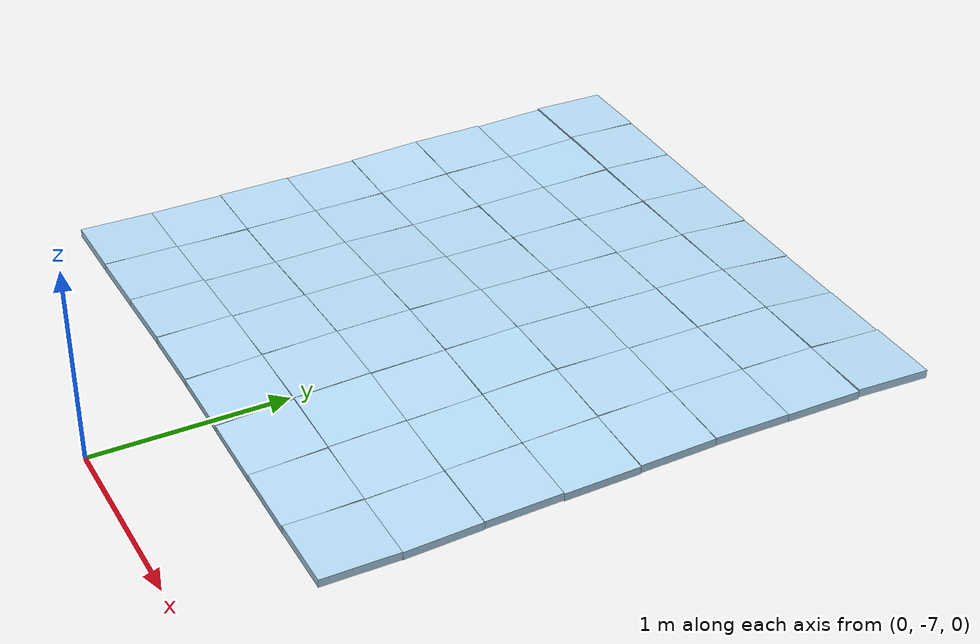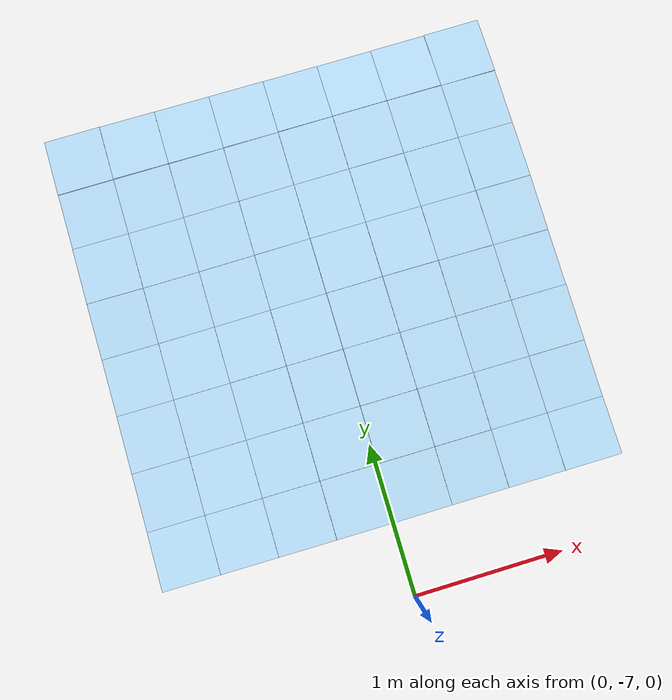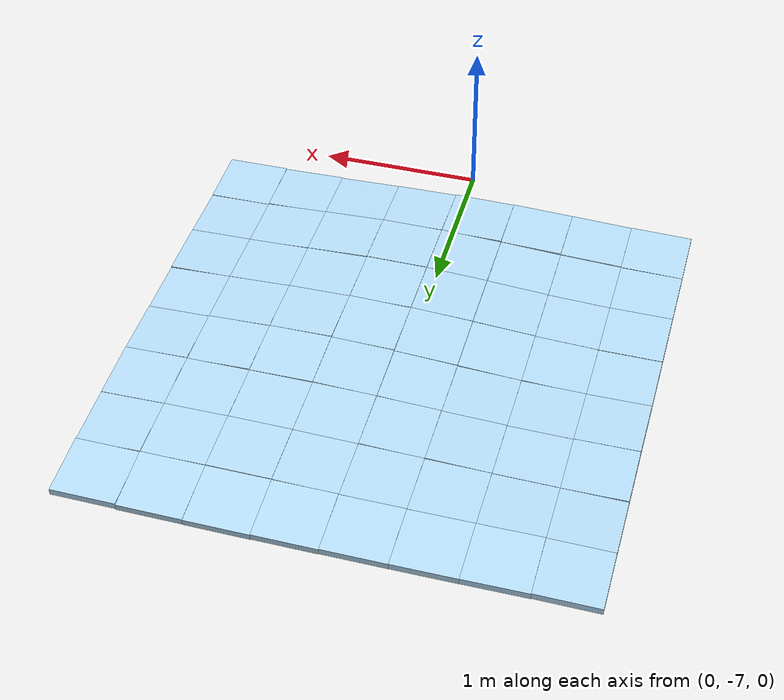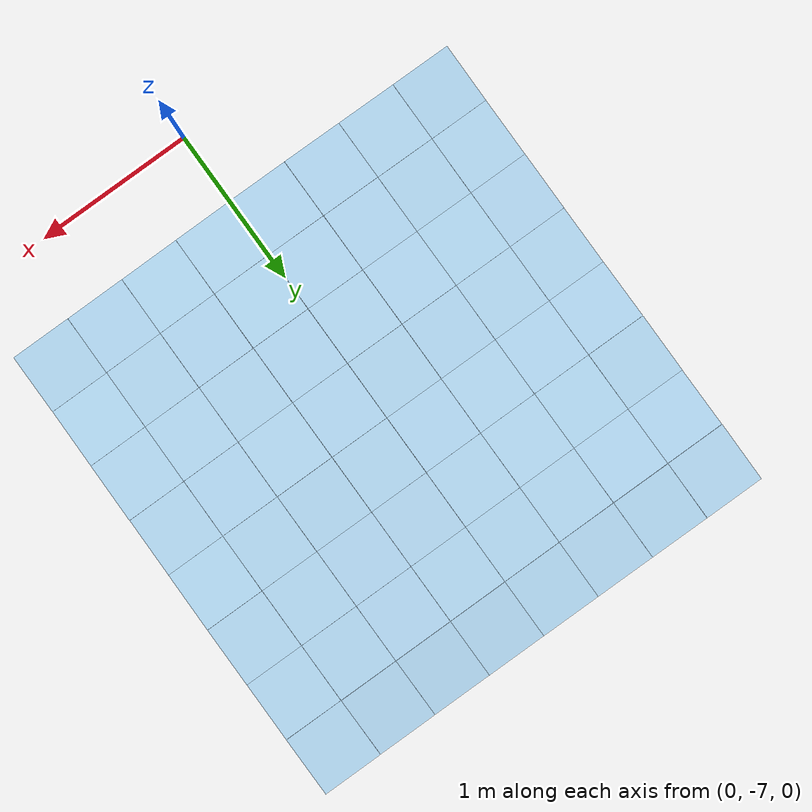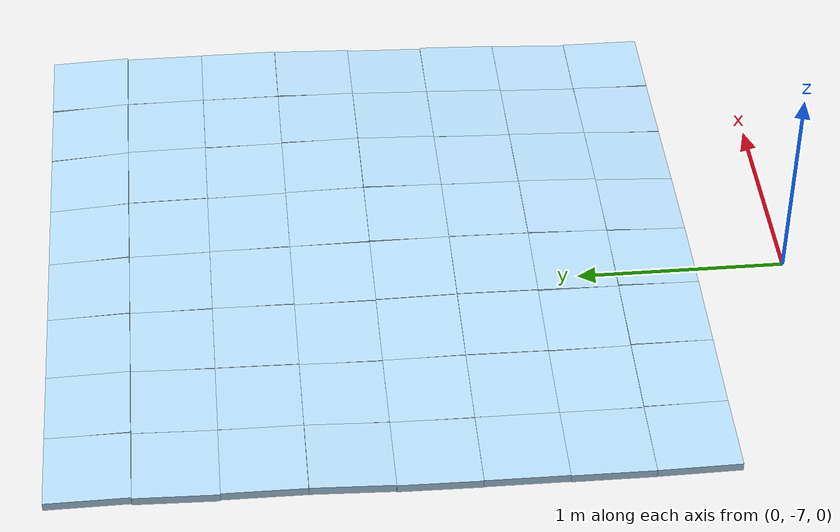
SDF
<sdf version="1.8">
 <world name="default">
  <model name="slip_patch_3">
   <static>true</static>
   <link name="t_0_0">
    <pose>-1.3125 -6.3125 0.2216 -0.01628 -0.01886 0</pose>
    <collision name="collision">
     <geometry><box><size>0.3750 0.3750 0.04</size></box></geometry>
     <surface><friction><ode><mu>0.3</mu><mu2>0.3</mu2></ode></friction></surface>
    </collision>
    <visual name="visual">
     <geometry><box><size>0.3750 0.3750 0.04</size></box></geometry>
     <material>
      <ambient>0.62 0.76 0.85 1</ambient>
      <diffuse>0.70 0.85 0.95 1</diffuse>
      <specular>0.9 0.9 0.9 1</specular>
     </material>
    </visual>
   </link>
   <link name="t_0_1">
    <pose>-1.3125 -5.9375 0.2179 0.00695 -0.01092 0</pose>
    <collision name="collision">
     <geometry><box><size>0.3750 0.3750 0.04</size></box></geometry>
     <surface><friction><ode><mu>0.3</mu><mu2>0.3</mu2></ode></friction></surface>
    </collision>
    <visual name="visual">
     <geometry><box><size>0.3750 0.3750 0.04</size></box></geometry>
     <material>
      <ambient>0.62 0.76 0.85 1</ambient>
      <diffuse>0.70 0.85 0.95 1</diffuse>
      <specular>0.9 0.9 0.9 1</specular>
     </material>
    </visual>
   </link>
   <link name="t_0_2">
    <pose>-1.3125 -5.5625 0.2222 0.00794 -0.00397 0</pose>
    <collision name="collision">
     <geometry><box><size>0.3750 0.3750 0.04</size></box></geometry>
     <surface><friction><ode><mu>0.3</mu><mu2>0.3</mu2></ode></friction></surface>
    </collision>
    <visual name="visual">
     <geometry><box><size>0.3750 0.3750 0.04</size></box></geometry>
     <material>
      <ambient>0.62 0.76 0.85 1</ambient>
      <diffuse>0.70 0.85 0.95 1</diffuse>
      <specular>0.9 0.9 0.9 1</specular>
     </material>
    </visual>
   </link>
   <link name="t_0_3">
    <pose>-1.3125 -5.1875 0.2244 0.01688 -0.00159 0</pose>
    <collision name="collision">
     <geometry><box><size>0.3750 0.3750 0.04</size></box></geometry>
     <surface><friction><ode><mu>0.3</mu><mu2>0.3</mu2></ode></friction></surface>
    </collision>
    <visual name="visual">
     <geometry><box><size>0.3750 0.3750 0.04</size></box></geometry>
     <material>
      <ambient>0.62 0.76 0.85 1</ambient>
      <diffuse>0.70 0.85 0.95 1</diffuse>
      <specular>0.9 0.9 0.9 1</specular>
     </material>
    </visual>
   </link>
   <link name="t_0_4">
    <pose>-1.3125 -4.8125 0.2377 0.04425 0.00715 0</pose>
    <collision name="collision">
     <geometry><box><size>0.3750 0.3750 0.04</size></box></geometry>
     <surface><friction><ode><mu>0.3</mu><mu2>0.3</mu2></ode></friction></surface>
    </collision>
    <visual name="visual">
     <geometry><box><size>0.3750 0.3750 0.04</size></box></geometry>
     <material>
      <ambient>0.62 0.76 0.85 1</ambient>
      <diffuse>0.70 0.85 0.95 1</diffuse>
      <specular>0.9 0.9 0.9 1</specular>
     </material>
    </visual>
   </link>
   <link name="t_0_5">
    <pose>-1.3125 -4.4375 0.2476 0.00695 0.00397 0</pose>
    <collision name="collision">
     <geometry><box><size>0.3750 0.3750 0.04</size></box></geometry>
     <surface><friction><ode><mu>0.3</mu><mu2>0.3</mu2></ode></friction></surface>
    </collision>
    <visual name="visual">
     <geometry><box><size>0.3750 0.3750 0.04</size></box></geometry>
     <material>
      <ambient>0.62 0.76 0.85 1</ambient>
      <diffuse>0.70 0.85 0.95 1</diffuse>
      <specular>0.9 0.9 0.9 1</specular>
     </material>
    </visual>
   </link>
   <link name="t_0_6">
    <pose>-1.3125 -4.0625 0.2520 0.03275 -0.01191 0</pose>
    <collision name="collision">
     <geometry><box><size>0.3750 0.3750 0.04</size></box></geometry>
     <surface><friction><ode><mu>0.3</mu><mu2>0.3</mu2></ode></friction></surface>
    </collision>
    <visual name="visual">
     <geometry><box><size>0.3750 0.3750 0.04</size></box></geometry>
     <material>
      <ambient>0.62 0.76 0.85 1</ambient>
      <diffuse>0.70 0.85 0.95 1</diffuse>
      <specular>0.9 0.9 0.9 1</specular>
     </material>
    </visual>
   </link>
   <link name="t_0_7">
    <pose>-1.3125 -3.6875 0.2628 -0.01231 -0.01291 0</pose>
    <collision name="collision">
     <geometry><box><size>0.3750 0.3750 0.04</size></box></geometry>
     <surface><friction><ode><mu>0.3</mu><mu2>0.3</mu2></ode></friction></surface>
    </collision>
    <visual name="visual">
     <geometry><box><size>0.3750 0.3750 0.04</size></box></geometry>
     <material>
      <ambient>0.62 0.76 0.85 1</ambient>
      <diffuse>0.70 0.85 0.95 1</diffuse>
      <specular>0.9 0.9 0.9 1</specular>
     </material>
    </visual>
   </link>
   <link name="t_1_0">
    <pose>-0.9375 -6.3125 0.2325 -0.00198 -0.03771 0</pose>
    <collision name="collision">
     <geometry><box><size>0.3750 0.3750 0.04</size></box></geometry>
     <surface><friction><ode><mu>0.3</mu><mu2>0.3</mu2></ode></friction></surface>
    </collision>
    <visual name="visual">
     <geometry><box><size>0.3750 0.3750 0.04</size></box></geometry>
     <material>
      <ambient>0.62 0.76 0.85 1</ambient>
      <diffuse>0.70 0.85 0.95 1</diffuse>
      <specular>0.9 0.9 0.9 1</specular>
     </material>
    </visual>
   </link>
   <link name="t_1_1">
    <pose>-0.9375 -5.9375 0.2263 -0.00992 -0.03970 0</pose>
    <collision name="collision">
     <geometry><box><size>0.3750 0.3750 0.04</size></box></geometry>
     <surface><friction><ode><mu>0.3</mu><mu2>0.3</mu2></ode></friction></surface>
    </collision>
    <visual name="visual">
     <geometry><box><size>0.3750 0.3750 0.04</size></box></geometry>
     <material>
      <ambient>0.62 0.76 0.85 1</ambient>
      <diffuse>0.70 0.85 0.95 1</diffuse>
      <specular>0.9 0.9 0.9 1</specular>
     </material>
    </visual>
   </link>
   <link name="t_1_2">
    <pose>-0.9375 -5.5625 0.2300 0.01290 -0.03970 0</pose>
    <collision name="collision">
     <geometry><box><size>0.3750 0.3750 0.04</size></box></geometry>
     <surface><friction><ode><mu>0.3</mu><mu2>0.3</mu2></ode></friction></surface>
    </collision>
    <visual name="visual">
     <geometry><box><size>0.3750 0.3750 0.04</size></box></geometry>
     <material>
      <ambient>0.62 0.76 0.85 1</ambient>
      <diffuse>0.70 0.85 0.95 1</diffuse>
      <specular>0.9 0.9 0.9 1</specular>
     </material>
    </visual>
   </link>
   <link name="t_1_3">
    <pose>-0.9375 -5.1875 0.2325 0.00099 -0.04069 0</pose>
    <collision name="collision">
     <geometry><box><size>0.3750 0.3750 0.04</size></box></geometry>
     <surface><friction><ode><mu>0.3</mu><mu2>0.3</mu2></ode></friction></surface>
    </collision>
    <visual name="visual">
     <geometry><box><size>0.3750 0.3750 0.04</size></box></geometry>
     <material>
      <ambient>0.62 0.76 0.85 1</ambient>
      <diffuse>0.70 0.85 0.95 1</diffuse>
      <specular>0.9 0.9 0.9 1</specular>
     </material>
    </visual>
   </link>
   <link name="t_1_4">
    <pose>-0.9375 -4.8125 0.2381 0.02978 -0.01390 0</pose>
    <collision name="collision">
     <geometry><box><size>0.3750 0.3750 0.04</size></box></geometry>
     <surface><friction><ode><mu>0.3</mu><mu2>0.3</mu2></ode></friction></surface>
    </collision>
    <visual name="visual">
     <geometry><box><size>0.3750 0.3750 0.04</size></box></geometry>
     <material>
      <ambient>0.62 0.76 0.85 1</ambient>
      <diffuse>0.70 0.85 0.95 1</diffuse>
      <specular>0.9 0.9 0.9 1</specular>
     </material>
    </visual>
   </link>
   <link name="t_1_5">
    <pose>-0.9375 -4.4375 0.2483 0.02184 -0.01589 0</pose>
    <collision name="collision">
     <geometry><box><size>0.3750 0.3750 0.04</size></box></geometry>
     <surface><friction><ode><mu>0.3</mu><mu2>0.3</mu2></ode></friction></surface>
    </collision>
    <visual name="visual">
     <geometry><box><size>0.3750 0.3750 0.04</size></box></geometry>
     <material>
      <ambient>0.62 0.76 0.85 1</ambient>
      <diffuse>0.70 0.85 0.95 1</diffuse>
      <specular>0.9 0.9 0.9 1</specular>
     </material>
    </visual>
   </link>
   <link name="t_1_6">
    <pose>-0.9375 -4.0625 0.2573 0.03473 -0.01489 0</pose>
    <collision name="collision">
     <geometry><box><size>0.3750 0.3750 0.04</size></box></geometry>
     <surface><friction><ode><mu>0.3</mu><mu2>0.3</mu2></ode></friction></surface>
    </collision>
    <visual name="visual">
     <geometry><box><size>0.3750 0.3750 0.04</size></box></geometry>
     <material>
      <ambient>0.62 0.76 0.85 1</ambient>
      <diffuse>0.70 0.85 0.95 1</diffuse>
      <specular>0.9 0.9 0.9 1</specular>
     </material>
    </visual>
   </link>
   <link name="t_1_7">
    <pose>-0.9375 -3.6875 0.2641 -0.03176 0.00496 0</pose>
    <collision name="collision">
     <geometry><box><size>0.3750 0.3750 0.04</size></box></geometry>
     <surface><friction><ode><mu>0.3</mu><mu2>0.3</mu2></ode></friction></surface>
    </collision>
    <visual name="visual">
     <geometry><box><size>0.3750 0.3750 0.04</size></box></geometry>
     <material>
      <ambient>0.62 0.76 0.85 1</ambient>
      <diffuse>0.70 0.85 0.95 1</diffuse>
      <specular>0.9 0.9 0.9 1</specular>
     </material>
    </visual>
   </link>
   <link name="t_2_0">
    <pose>-0.5625 -6.3125 0.2480 0.01012 -0.03672 0</pose>
    <collision name="collision">
     <geometry><box><size>0.3750 0.3750 0.04</size></box></geometry>
     <surface><friction><ode><mu>0.3</mu><mu2>0.3</mu2></ode></friction></surface>
    </collision>
    <visual name="visual">
     <geometry><box><size>0.3750 0.3750 0.04</size></box></geometry>
     <material>
      <ambient>0.62 0.76 0.85 1</ambient>
      <diffuse>0.70 0.85 0.95 1</diffuse>
      <specular>0.9 0.9 0.9 1</specular>
     </material>
    </visual>
   </link>
   <link name="t_2_1">
    <pose>-0.5625 -5.9375 0.2455 0.00198 -0.05654 0</pose>
    <collision name="collision">
     <geometry><box><size>0.3750 0.3750 0.04</size></box></geometry>
     <surface><friction><ode><mu>0.3</mu><mu2>0.3</mu2></ode></friction></surface>
    </collision>
    <visual name="visual">
     <geometry><box><size>0.3750 0.3750 0.04</size></box></geometry>
     <material>
      <ambient>0.62 0.76 0.85 1</ambient>
      <diffuse>0.70 0.85 0.95 1</diffuse>
      <specular>0.9 0.9 0.9 1</specular>
     </material>
    </visual>
   </link>
   <link name="t_2_2">
    <pose>-0.5625 -5.5625 0.2520 0.01704 -0.06564 0</pose>
    <collision name="collision">
     <geometry><box><size>0.3750 0.3750 0.04</size></box></geometry>
     <surface><friction><ode><mu>0.3</mu><mu2>0.3</mu2></ode></friction></surface>
    </collision>
    <visual name="visual">
     <geometry><box><size>0.3750 0.3750 0.04</size></box></geometry>
     <material>
      <ambient>0.62 0.76 0.85 1</ambient>
      <diffuse>0.70 0.85 0.95 1</diffuse>
      <specular>0.9 0.9 0.9 1</specular>
     </material>
    </visual>
   </link>
   <link name="t_2_3">
    <pose>-0.5625 -5.1875 0.2521 -0.01249 -0.06208 0</pose>
    <collision name="collision">
     <geometry><box><size>0.3750 0.3750 0.04</size></box></geometry>
     <surface><friction><ode><mu>0.3</mu><mu2>0.3</mu2></ode></friction></surface>
    </collision>
    <visual name="visual">
     <geometry><box><size>0.3750 0.3750 0.04</size></box></geometry>
     <material>
      <ambient>0.62 0.76 0.85 1</ambient>
      <diffuse>0.70 0.85 0.95 1</diffuse>
      <specular>0.9 0.9 0.9 1</specular>
     </material>
    </visual>
   </link>
   <link name="t_2_4">
    <pose>-0.5625 -4.8125 0.2502 0.01349 -0.04762 0</pose>
    <collision name="collision">
     <geometry><box><size>0.3750 0.3750 0.04</size></box></geometry>
     <surface><friction><ode><mu>0.3</mu><mu2>0.3</mu2></ode></friction></surface>
    </collision>
    <visual name="visual">
     <geometry><box><size>0.3750 0.3750 0.04</size></box></geometry>
     <material>
      <ambient>0.62 0.76 0.85 1</ambient>
      <diffuse>0.70 0.85 0.95 1</diffuse>
      <specular>0.9 0.9 0.9 1</specular>
     </material>
    </visual>
   </link>
   <link name="t_2_5">
    <pose>-0.5625 -4.4375 0.2601 0.01885 -0.03672 0</pose>
    <collision name="collision">
     <geometry><box><size>0.3750 0.3750 0.04</size></box></geometry>
     <surface><friction><ode><mu>0.3</mu><mu2>0.3</mu2></ode></friction></surface>
    </collision>
    <visual name="visual">
     <geometry><box><size>0.3750 0.3750 0.04</size></box></geometry>
     <material>
      <ambient>0.62 0.76 0.85 1</ambient>
      <diffuse>0.70 0.85 0.95 1</diffuse>
      <specular>0.9 0.9 0.9 1</specular>
     </material>
    </visual>
   </link>
   <link name="t_2_6">
    <pose>-0.5625 -4.0625 0.2632 0.01092 -0.02184 0</pose>
    <collision name="collision">
     <geometry><box><size>0.3750 0.3750 0.04</size></box></geometry>
     <surface><friction><ode><mu>0.3</mu><mu2>0.3</mu2></ode></friction></surface>
    </collision>
    <visual name="visual">
     <geometry><box><size>0.3750 0.3750 0.04</size></box></geometry>
     <material>
      <ambient>0.62 0.76 0.85 1</ambient>
      <diffuse>0.70 0.85 0.95 1</diffuse>
      <specular>0.9 0.9 0.9 1</specular>
     </material>
    </visual>
   </link>
   <link name="t_2_7">
    <pose>-0.5625 -3.6875 0.2626 -0.03613 -0.00079 0</pose>
    <collision name="collision">
     <geometry><box><size>0.3750 0.3750 0.04</size></box></geometry>
     <surface><friction><ode><mu>0.3</mu><mu2>0.3</mu2></ode></friction></surface>
    </collision>
    <visual name="visual">
     <geometry><box><size>0.3750 0.3750 0.04</size></box></geometry>
     <material>
      <ambient>0.62 0.76 0.85 1</ambient>
      <diffuse>0.70 0.85 0.95 1</diffuse>
      <specular>0.9 0.9 0.9 1</specular>
     </material>
    </visual>
   </link>
   <link name="t_3_0">
    <pose>-0.1875 -6.3125 0.2574 0.03216 -0.01052 0</pose>
    <collision name="collision">
     <geometry><box><size>0.3750 0.3750 0.04</size></box></geometry>
     <surface><friction><ode><mu>0.3</mu><mu2>0.3</mu2></ode></friction></surface>
    </collision>
    <visual name="visual">
     <geometry><box><size>0.3750 0.3750 0.04</size></box></geometry>
     <material>
      <ambient>0.62 0.76 0.85 1</ambient>
      <diffuse>0.70 0.85 0.95 1</diffuse>
      <specular>0.9 0.9 0.9 1</specular>
     </material>
    </visual>
   </link>
   <link name="t_3_1">
    <pose>-0.1875 -5.9375 0.2666 0.02281 -0.04267 0</pose>
    <collision name="collision">
     <geometry><box><size>0.3750 0.3750 0.04</size></box></geometry>
     <surface><friction><ode><mu>0.3</mu><mu2>0.3</mu2></ode></friction></surface>
    </collision>
    <visual name="visual">
     <geometry><box><size>0.3750 0.3750 0.04</size></box></geometry>
     <material>
      <ambient>0.62 0.76 0.85 1</ambient>
      <diffuse>0.70 0.85 0.95 1</diffuse>
      <specular>0.9 0.9 0.9 1</specular>
     </material>
    </visual>
   </link>
   <link name="t_3_2">
    <pose>-0.1875 -5.5625 0.2748 0.01587 -0.04723 0</pose>
    <collision name="collision">
     <geometry><box><size>0.3750 0.3750 0.04</size></box></geometry>
     <surface><friction><ode><mu>0.3</mu><mu2>0.3</mu2></ode></friction></surface>
    </collision>
    <visual name="visual">
     <geometry><box><size>0.3750 0.3750 0.04</size></box></geometry>
     <material>
      <ambient>0.62 0.76 0.85 1</ambient>
      <diffuse>0.70 0.85 0.95 1</diffuse>
      <specular>0.9 0.9 0.9 1</specular>
     </material>
    </visual>
   </link>
   <link name="t_3_3">
    <pose>-0.1875 -5.1875 0.2759 -0.01209 -0.05555 0</pose>
    <collision name="collision">
     <geometry><box><size>0.3750 0.3750 0.04</size></box></geometry>
     <surface><friction><ode><mu>0.3</mu><mu2>0.3</mu2></ode></friction></surface>
    </collision>
    <visual name="visual">
     <geometry><box><size>0.3750 0.3750 0.04</size></box></geometry>
     <material>
      <ambient>0.62 0.76 0.85 1</ambient>
      <diffuse>0.70 0.85 0.95 1</diffuse>
      <specular>0.9 0.9 0.9 1</specular>
     </material>
    </visual>
   </link>
   <link name="t_3_4">
    <pose>-0.1875 -4.8125 0.2722 0.00139 -0.06247 0</pose>
    <collision name="collision">
     <geometry><box><size>0.3750 0.3750 0.04</size></box></geometry>
     <surface><friction><ode><mu>0.3</mu><mu2>0.3</mu2></ode></friction></surface>
    </collision>
    <visual name="visual">
     <geometry><box><size>0.3750 0.3750 0.04</size></box></geometry>
     <material>
      <ambient>0.62 0.76 0.85 1</ambient>
      <diffuse>0.70 0.85 0.95 1</diffuse>
      <specular>0.9 0.9 0.9 1</specular>
     </material>
    </visual>
   </link>
   <link name="t_3_5">
    <pose>-0.1875 -4.4375 0.2745 0.00099 -0.03870 0</pose>
    <collision name="collision">
     <geometry><box><size>0.3750 0.3750 0.04</size></box></geometry>
     <surface><friction><ode><mu>0.3</mu><mu2>0.3</mu2></ode></friction></surface>
    </collision>
    <visual name="visual">
     <geometry><box><size>0.3750 0.3750 0.04</size></box></geometry>
     <material>
      <ambient>0.62 0.76 0.85 1</ambient>
      <diffuse>0.70 0.85 0.95 1</diffuse>
      <specular>0.9 0.9 0.9 1</specular>
     </material>
    </visual>
   </link>
   <link name="t_3_6">
    <pose>-0.1875 -4.0625 0.2722 -0.00794 -0.02482 0</pose>
    <collision name="collision">
     <geometry><box><size>0.3750 0.3750 0.04</size></box></geometry>
     <surface><friction><ode><mu>0.3</mu><mu2>0.3</mu2></ode></friction></surface>
    </collision>
    <visual name="visual">
     <geometry><box><size>0.3750 0.3750 0.04</size></box></geometry>
     <material>
      <ambient>0.62 0.76 0.85 1</ambient>
      <diffuse>0.70 0.85 0.95 1</diffuse>
      <specular>0.9 0.9 0.9 1</specular>
     </material>
    </visual>
   </link>
   <link name="t_3_7">
    <pose>-0.1875 -3.6875 0.2649 -0.04723 -0.00635 0</pose>
    <collision name="collision">
     <geometry><box><size>0.3750 0.3750 0.04</size></box></geometry>
     <surface><friction><ode><mu>0.3</mu><mu2>0.3</mu2></ode></friction></surface>
    </collision>
    <visual name="visual">
     <geometry><box><size>0.3750 0.3750 0.04</size></box></geometry>
     <material>
      <ambient>0.62 0.76 0.85 1</ambient>
      <diffuse>0.70 0.85 0.95 1</diffuse>
      <specular>0.9 0.9 0.9 1</specular>
     </material>
    </visual>
   </link>
   <link name="t_4_0">
    <pose>0.1875 -6.3125 0.2561 0.05376 0.01608 0</pose>
    <collision name="collision">
     <geometry><box><size>0.3750 0.3750 0.04</size></box></geometry>
     <surface><friction><ode><mu>0.3</mu><mu2>0.3</mu2></ode></friction></surface>
    </collision>
    <visual name="visual">
     <geometry><box><size>0.3750 0.3750 0.04</size></box></geometry>
     <material>
      <ambient>0.62 0.76 0.85 1</ambient>
      <diffuse>0.70 0.85 0.95 1</diffuse>
      <specular>0.9 0.9 0.9 1</specular>
     </material>
    </visual>
   </link>
   <link name="t_4_1">
    <pose>0.1875 -5.9375 0.2759 0.03970 -0.00496 0</pose>
    <collision name="collision">
     <geometry><box><size>0.3750 0.3750 0.04</size></box></geometry>
     <surface><friction><ode><mu>0.3</mu><mu2>0.3</mu2></ode></friction></surface>
    </collision>
    <visual name="visual">
     <geometry><box><size>0.3750 0.3750 0.04</size></box></geometry>
     <material>
      <ambient>0.62 0.76 0.85 1</ambient>
      <diffuse>0.70 0.85 0.95 1</diffuse>
      <specular>0.9 0.9 0.9 1</specular>
     </material>
    </visual>
   </link>
   <link name="t_4_2">
    <pose>0.1875 -5.5625 0.2849 0.01827 -0.00536 0</pose>
    <collision name="collision">
     <geometry><box><size>0.3750 0.3750 0.04</size></box></geometry>
     <surface><friction><ode><mu>0.3</mu><mu2>0.3</mu2></ode></friction></surface>
    </collision>
    <visual name="visual">
     <geometry><box><size>0.3750 0.3750 0.04</size></box></geometry>
     <material>
      <ambient>0.62 0.76 0.85 1</ambient>
      <diffuse>0.70 0.85 0.95 1</diffuse>
      <specular>0.9 0.9 0.9 1</specular>
     </material>
    </visual>
   </link>
   <link name="t_4_3">
    <pose>0.1875 -5.1875 0.2914 0.01370 -0.02402 0</pose>
    <collision name="collision">
     <geometry><box><size>0.3750 0.3750 0.04</size></box></geometry>
     <surface><friction><ode><mu>0.3</mu><mu2>0.3</mu2></ode></friction></surface>
    </collision>
    <visual name="visual">
     <geometry><box><size>0.3750 0.3750 0.04</size></box></geometry>
     <material>
      <ambient>0.62 0.76 0.85 1</ambient>
      <diffuse>0.70 0.85 0.95 1</diffuse>
      <specular>0.9 0.9 0.9 1</specular>
     </material>
    </visual>
   </link>
   <link name="t_4_4">
    <pose>0.1875 -4.8125 0.2917 -0.01191 -0.03573 0</pose>
    <collision name="collision">
     <geometry><box><size>0.3750 0.3750 0.04</size></box></geometry>
     <surface><friction><ode><mu>0.3</mu><mu2>0.3</mu2></ode></friction></surface>
    </collision>
    <visual name="visual">
     <geometry><box><size>0.3750 0.3750 0.04</size></box></geometry>
     <material>
      <ambient>0.62 0.76 0.85 1</ambient>
      <diffuse>0.70 0.85 0.95 1</diffuse>
      <specular>0.9 0.9 0.9 1</specular>
     </material>
    </visual>
   </link>
   <link name="t_4_5">
    <pose>0.1875 -4.4375 0.2855 -0.01529 -0.02045 0</pose>
    <collision name="collision">
     <geometry><box><size>0.3750 0.3750 0.04</size></box></geometry>
     <surface><friction><ode><mu>0.3</mu><mu2>0.3</mu2></ode></friction></surface>
    </collision>
    <visual name="visual">
     <geometry><box><size>0.3750 0.3750 0.04</size></box></geometry>
     <material>
      <ambient>0.62 0.76 0.85 1</ambient>
      <diffuse>0.70 0.85 0.95 1</diffuse>
      <specular>0.9 0.9 0.9 1</specular>
     </material>
    </visual>
   </link>
   <link name="t_4_6">
    <pose>0.1875 -4.0625 0.2815 -0.00993 -0.02482 0</pose>
    <collision name="collision">
     <geometry><box><size>0.3750 0.3750 0.04</size></box></geometry>
     <surface><friction><ode><mu>0.3</mu><mu2>0.3</mu2></ode></friction></surface>
    </collision>
    <visual name="visual">
     <geometry><box><size>0.3750 0.3750 0.04</size></box></geometry>
     <material>
      <ambient>0.62 0.76 0.85 1</ambient>
      <diffuse>0.70 0.85 0.95 1</diffuse>
      <specular>0.9 0.9 0.9 1</specular>
     </material>
    </visual>
   </link>
   <link name="t_4_7">
    <pose>0.1875 -3.6875 0.2682 -0.07038 -0.01033 0</pose>
    <collision name="collision">
     <geometry><box><size>0.3750 0.3750 0.04</size></box></geometry>
     <surface><friction><ode><mu>0.3</mu><mu2>0.3</mu2></ode></friction></surface>
    </collision>
    <visual name="visual">
     <geometry><box><size>0.3750 0.3750 0.04</size></box></geometry>
     <material>
      <ambient>0.62 0.76 0.85 1</ambient>
      <diffuse>0.70 0.85 0.95 1</diffuse>
      <specular>0.9 0.9 0.9 1</specular>
     </material>
    </visual>
   </link>
   <link name="t_5_0">
    <pose>0.5625 -6.3125 0.2461 0.05671 0.03037 0</pose>
    <collision name="collision">
     <geometry><box><size>0.3750 0.3750 0.04</size></box></geometry>
     <surface><friction><ode><mu>0.3</mu><mu2>0.3</mu2></ode></friction></surface>
    </collision>
    <visual name="visual">
     <geometry><box><size>0.3750 0.3750 0.04</size></box></geometry>
     <material>
      <ambient>0.62 0.76 0.85 1</ambient>
      <diffuse>0.70 0.85 0.95 1</diffuse>
      <specular>0.9 0.9 0.9 1</specular>
     </material>
    </visual>
   </link>
   <link name="t_5_1">
    <pose>0.5625 -5.9375 0.2675 0.03966 0.04069 0</pose>
    <collision name="collision">
     <geometry><box><size>0.3750 0.3750 0.04</size></box></geometry>
     <surface><friction><ode><mu>0.3</mu><mu2>0.3</mu2></ode></friction></surface>
    </collision>
    <visual name="visual">
     <geometry><box><size>0.3750 0.3750 0.04</size></box></geometry>
     <material>
      <ambient>0.62 0.76 0.85 1</ambient>
      <diffuse>0.70 0.85 0.95 1</diffuse>
      <specular>0.9 0.9 0.9 1</specular>
     </material>
    </visual>
   </link>
   <link name="t_5_2">
    <pose>0.5625 -5.5625 0.2781 0.03175 0.03077 0</pose>
    <collision name="collision">
     <geometry><box><size>0.3750 0.3750 0.04</size></box></geometry>
     <surface><friction><ode><mu>0.3</mu><mu2>0.3</mu2></ode></friction></surface>
    </collision>
    <visual name="visual">
     <geometry><box><size>0.3750 0.3750 0.04</size></box></geometry>
     <material>
      <ambient>0.62 0.76 0.85 1</ambient>
      <diffuse>0.70 0.85 0.95 1</diffuse>
      <specular>0.9 0.9 0.9 1</specular>
     </material>
    </visual>
   </link>
   <link name="t_5_3">
    <pose>0.5625 -5.1875 0.2937 0.03533 0.01330 0</pose>
    <collision name="collision">
     <geometry><box><size>0.3750 0.3750 0.04</size></box></geometry>
     <surface><friction><ode><mu>0.3</mu><mu2>0.3</mu2></ode></friction></surface>
    </collision>
    <visual name="visual">
     <geometry><box><size>0.3750 0.3750 0.04</size></box></geometry>
     <material>
      <ambient>0.62 0.76 0.85 1</ambient>
      <diffuse>0.70 0.85 0.95 1</diffuse>
      <specular>0.9 0.9 0.9 1</specular>
     </material>
    </visual>
   </link>
   <link name="t_5_4">
    <pose>0.5625 -4.8125 0.2975 -0.01390 0.00338 0</pose>
    <collision name="collision">
     <geometry><box><size>0.3750 0.3750 0.04</size></box></geometry>
     <surface><friction><ode><mu>0.3</mu><mu2>0.3</mu2></ode></friction></surface>
    </collision>
    <visual name="visual">
     <geometry><box><size>0.3750 0.3750 0.04</size></box></geometry>
     <material>
      <ambient>0.62 0.76 0.85 1</ambient>
      <diffuse>0.70 0.85 0.95 1</diffuse>
      <specular>0.9 0.9 0.9 1</specular>
     </material>
    </visual>
   </link>
   <link name="t_5_5">
    <pose>0.5625 -4.4375 0.2901 -0.00913 -0.00675 0</pose>
    <collision name="collision">
     <geometry><box><size>0.3750 0.3750 0.04</size></box></geometry>
     <surface><friction><ode><mu>0.3</mu><mu2>0.3</mu2></ode></friction></surface>
    </collision>
    <visual name="visual">
     <geometry><box><size>0.3750 0.3750 0.04</size></box></geometry>
     <material>
      <ambient>0.62 0.76 0.85 1</ambient>
      <diffuse>0.70 0.85 0.95 1</diffuse>
      <specular>0.9 0.9 0.9 1</specular>
     </material>
    </visual>
   </link>
   <link name="t_5_6">
    <pose>0.5625 -4.0625 0.2902 -0.00993 -0.01390 0</pose>
    <collision name="collision">
     <geometry><box><size>0.3750 0.3750 0.04</size></box></geometry>
     <surface><friction><ode><mu>0.3</mu><mu2>0.3</mu2></ode></friction></surface>
    </collision>
    <visual name="visual">
     <geometry><box><size>0.3750 0.3750 0.04</size></box></geometry>
     <material>
      <ambient>0.62 0.76 0.85 1</ambient>
      <diffuse>0.70 0.85 0.95 1</diffuse>
      <specular>0.9 0.9 0.9 1</specular>
     </material>
    </visual>
   </link>
   <link name="t_5_7">
    <pose>0.5625 -3.6875 0.2713 -0.08399 -0.01211 0</pose>
    <collision name="collision">
     <geometry><box><size>0.3750 0.3750 0.04</size></box></geometry>
     <surface><friction><ode><mu>0.3</mu><mu2>0.3</mu2></ode></friction></surface>
    </collision>
    <visual name="visual">
     <geometry><box><size>0.3750 0.3750 0.04</size></box></geometry>
     <material>
      <ambient>0.62 0.76 0.85 1</ambient>
      <diffuse>0.70 0.85 0.95 1</diffuse>
      <specular>0.9 0.9 0.9 1</specular>
     </material>
    </visual>
   </link>
   <link name="t_6_0">
    <pose>0.9375 -6.3125 0.2353 0.03275 0.02383 0</pose>
    <collision name="collision">
     <geometry><box><size>0.3750 0.3750 0.04</size></box></geometry>
     <surface><friction><ode><mu>0.3</mu><mu2>0.3</mu2></ode></friction></surface>
    </collision>
    <visual name="visual">
     <geometry><box><size>0.3750 0.3750 0.04</size></box></geometry>
     <material>
      <ambient>0.62 0.76 0.85 1</ambient>
      <diffuse>0.70 0.85 0.95 1</diffuse>
      <specular>0.9 0.9 0.9 1</specular>
     </material>
    </visual>
   </link>
   <link name="t_6_1">
    <pose>0.9375 -5.9375 0.2495 0.03965 0.04960 0</pose>
    <collision name="collision">
     <geometry><box><size>0.3750 0.3750 0.04</size></box></geometry>
     <surface><friction><ode><mu>0.3</mu><mu2>0.3</mu2></ode></friction></surface>
    </collision>
    <visual name="visual">
     <geometry><box><size>0.3750 0.3750 0.04</size></box></geometry>
     <material>
      <ambient>0.62 0.76 0.85 1</ambient>
      <diffuse>0.70 0.85 0.95 1</diffuse>
      <specular>0.9 0.9 0.9 1</specular>
     </material>
    </visual>
   </link>
   <link name="t_6_2">
    <pose>0.9375 -5.5625 0.2660 0.04463 0.02978 0</pose>
    <collision name="collision">
     <geometry><box><size>0.3750 0.3750 0.04</size></box></geometry>
     <surface><friction><ode><mu>0.3</mu><mu2>0.3</mu2></ode></friction></surface>
    </collision>
    <visual name="visual">
     <geometry><box><size>0.3750 0.3750 0.04</size></box></geometry>
     <material>
      <ambient>0.62 0.76 0.85 1</ambient>
      <diffuse>0.70 0.85 0.95 1</diffuse>
      <specular>0.9 0.9 0.9 1</specular>
     </material>
    </visual>
   </link>
   <link name="t_6_3">
    <pose>0.9375 -5.1875 0.2824 0.03669 0.03870 0</pose>
    <collision name="collision">
     <geometry><box><size>0.3750 0.3750 0.04</size></box></geometry>
     <surface><friction><ode><mu>0.3</mu><mu2>0.3</mu2></ode></friction></surface>
    </collision>
    <visual name="visual">
     <geometry><box><size>0.3750 0.3750 0.04</size></box></geometry>
     <material>
      <ambient>0.62 0.76 0.85 1</ambient>
      <diffuse>0.70 0.85 0.95 1</diffuse>
      <specular>0.9 0.9 0.9 1</specular>
     </material>
    </visual>
   </link>
   <link name="t_6_4">
    <pose>0.9375 -4.8125 0.2914 0.00794 0.02581 0</pose>
    <collision name="collision">
     <geometry><box><size>0.3750 0.3750 0.04</size></box></geometry>
     <surface><friction><ode><mu>0.3</mu><mu2>0.3</mu2></ode></friction></surface>
    </collision>
    <visual name="visual">
     <geometry><box><size>0.3750 0.3750 0.04</size></box></geometry>
     <material>
      <ambient>0.62 0.76 0.85 1</ambient>
      <diffuse>0.70 0.85 0.95 1</diffuse>
      <specular>0.9 0.9 0.9 1</specular>
     </material>
    </visual>
   </link>
   <link name="t_6_5">
    <pose>0.9375 -4.4375 0.2914 0.00298 0.00199 0</pose>
    <collision name="collision">
     <geometry><box><size>0.3750 0.3750 0.04</size></box></geometry>
     <surface><friction><ode><mu>0.3</mu><mu2>0.3</mu2></ode></friction></surface>
    </collision>
    <visual name="visual">
     <geometry><box><size>0.3750 0.3750 0.04</size></box></geometry>
     <material>
      <ambient>0.62 0.76 0.85 1</ambient>
      <diffuse>0.70 0.85 0.95 1</diffuse>
      <specular>0.9 0.9 0.9 1</specular>
     </material>
    </visual>
   </link>
   <link name="t_6_6">
    <pose>0.9375 -4.0625 0.2914 -0.00993 -0.00000 0</pose>
    <collision name="collision">
     <geometry><box><size>0.3750 0.3750 0.04</size></box></geometry>
     <surface><friction><ode><mu>0.3</mu><mu2>0.3</mu2></ode></friction></surface>
    </collision>
    <visual name="visual">
     <geometry><box><size>0.3750 0.3750 0.04</size></box></geometry>
     <material>
      <ambient>0.62 0.76 0.85 1</ambient>
      <diffuse>0.70 0.85 0.95 1</diffuse>
      <specular>0.9 0.9 0.9 1</specular>
     </material>
    </visual>
   </link>
   <link name="t_6_7">
    <pose>0.9375 -3.6875 0.2772 -0.07432 -0.01390 0</pose>
    <collision name="collision">
     <geometry><box><size>0.3750 0.3750 0.04</size></box></geometry>
     <surface><friction><ode><mu>0.3</mu><mu2>0.3</mu2></ode></friction></surface>
    </collision>
    <visual name="visual">
     <geometry><box><size>0.3750 0.3750 0.04</size></box></geometry>
     <material>
      <ambient>0.62 0.76 0.85 1</ambient>
      <diffuse>0.70 0.85 0.95 1</diffuse>
      <specular>0.9 0.9 0.9 1</specular>
     </material>
    </visual>
   </link>
   <link name="t_7_0">
    <pose>1.3125 -6.3125 0.2290 0.00020 0.00695 0</pose>
    <collision name="collision">
     <geometry><box><size>0.3750 0.3750 0.04</size></box></geometry>
     <surface><friction><ode><mu>0.3</mu><mu2>0.3</mu2></ode></friction></surface>
    </collision>
    <visual name="visual">
     <geometry><box><size>0.3750 0.3750 0.04</size></box></geometry>
     <material>
      <ambient>0.62 0.76 0.85 1</ambient>
      <diffuse>0.70 0.85 0.95 1</diffuse>
      <specular>0.9 0.9 0.9 1</specular>
     </material>
    </visual>
   </link>
   <link name="t_7_1">
    <pose>1.3125 -5.9375 0.2365 0.04960 0.01390 0</pose>
    <collision name="collision">
     <geometry><box><size>0.3750 0.3750 0.04</size></box></geometry>
     <surface><friction><ode><mu>0.3</mu><mu2>0.3</mu2></ode></friction></surface>
    </collision>
    <visual name="visual">
     <geometry><box><size>0.3750 0.3750 0.04</size></box></geometry>
     <material>
      <ambient>0.62 0.76 0.85 1</ambient>
      <diffuse>0.70 0.85 0.95 1</diffuse>
      <specular>0.9 0.9 0.9 1</specular>
     </material>
    </visual>
   </link>
   <link name="t_7_2">
    <pose>1.3125 -5.5625 0.2558 0.03790 0.01866 0</pose>
    <collision name="collision">
     <geometry><box><size>0.3750 0.3750 0.04</size></box></geometry>
     <surface><friction><ode><mu>0.3</mu><mu2>0.3</mu2></ode></friction></surface>
    </collision>
    <visual name="visual">
     <geometry><box><size>0.3750 0.3750 0.04</size></box></geometry>
     <material>
      <ambient>0.62 0.76 0.85 1</ambient>
      <diffuse>0.70 0.85 0.95 1</diffuse>
      <specular>0.9 0.9 0.9 1</specular>
     </material>
    </visual>
   </link>
   <link name="t_7_3">
    <pose>1.3125 -5.1875 0.2664 0.03134 0.04069 0</pose>
    <collision name="collision">
     <geometry><box><size>0.3750 0.3750 0.04</size></box></geometry>
     <surface><friction><ode><mu>0.3</mu><mu2>0.3</mu2></ode></friction></surface>
    </collision>
    <visual name="visual">
     <geometry><box><size>0.3750 0.3750 0.04</size></box></geometry>
     <material>
      <ambient>0.62 0.76 0.85 1</ambient>
      <diffuse>0.70 0.85 0.95 1</diffuse>
      <specular>0.9 0.9 0.9 1</specular>
     </material>
    </visual>
   </link>
   <link name="t_7_4">
    <pose>1.3125 -4.8125 0.2813 0.03631 0.02621 0</pose>
    <collision name="collision">
     <geometry><box><size>0.3750 0.3750 0.04</size></box></geometry>
     <surface><friction><ode><mu>0.3</mu><mu2>0.3</mu2></ode></friction></surface>
    </collision>
    <visual name="visual">
     <geometry><box><size>0.3750 0.3750 0.04</size></box></geometry>
     <material>
      <ambient>0.62 0.76 0.85 1</ambient>
      <diffuse>0.70 0.85 0.95 1</diffuse>
      <specular>0.9 0.9 0.9 1</specular>
     </material>
    </visual>
   </link>
   <link name="t_7_5">
    <pose>1.3125 -4.4375 0.2886 0.00099 0.01569 0</pose>
    <collision name="collision">
     <geometry><box><size>0.3750 0.3750 0.04</size></box></geometry>
     <surface><friction><ode><mu>0.3</mu><mu2>0.3</mu2></ode></friction></surface>
    </collision>
    <visual name="visual">
     <geometry><box><size>0.3750 0.3750 0.04</size></box></geometry>
     <material>
      <ambient>0.62 0.76 0.85 1</ambient>
      <diffuse>0.70 0.85 0.95 1</diffuse>
      <specular>0.9 0.9 0.9 1</specular>
     </material>
    </visual>
   </link>
   <link name="t_7_6">
    <pose>1.3125 -4.0625 0.2877 0.00199 0.01688 0</pose>
    <collision name="collision">
     <geometry><box><size>0.3750 0.3750 0.04</size></box></geometry>
     <surface><friction><ode><mu>0.3</mu><mu2>0.3</mu2></ode></friction></surface>
    </collision>
    <visual name="visual">
     <geometry><box><size>0.3750 0.3750 0.04</size></box></geometry>
     <material>
      <ambient>0.62 0.76 0.85 1</ambient>
      <diffuse>0.70 0.85 0.95 1</diffuse>
      <specular>0.9 0.9 0.9 1</specular>
     </material>
    </visual>
   </link>
   <link name="t_7_7">
    <pose>1.3125 -3.6875 0.2832 -0.03830 -0.01589 0</pose>
    <collision name="collision">
     <geometry><box><size>0.3750 0.3750 0.04</size></box></geometry>
     <surface><friction><ode><mu>0.3</mu><mu2>0.3</mu2></ode></friction></surface>
    </collision>
    <visual name="visual">
     <geometry><box><size>0.3750 0.3750 0.04</size></box></geometry>
     <material>
      <ambient>0.62 0.76 0.85 1</ambient>
      <diffuse>0.70 0.85 0.95 1</diffuse>
      <specular>0.9 0.9 0.9 1</specular>
     </material>
    </visual>
   </link>
  </model>
 </world>
</sdf>
